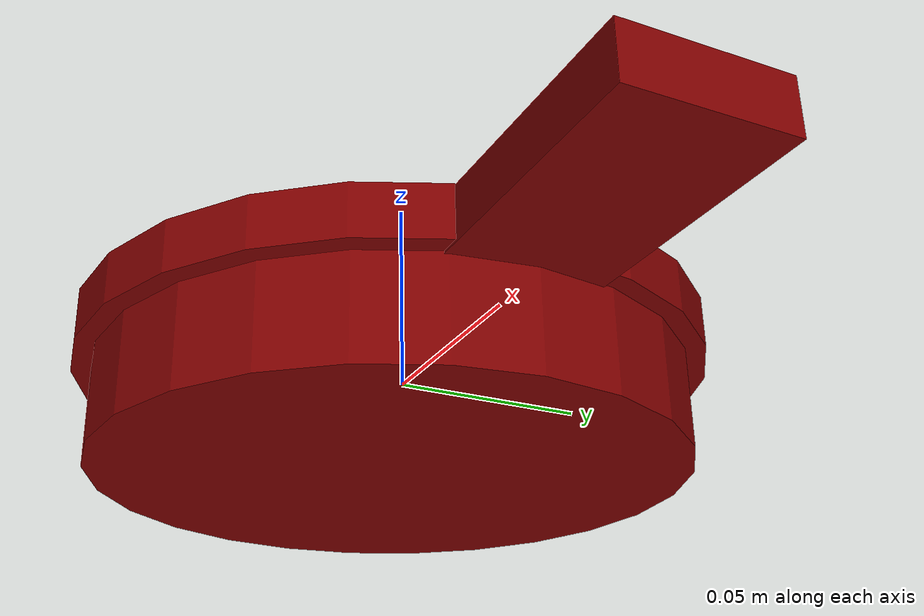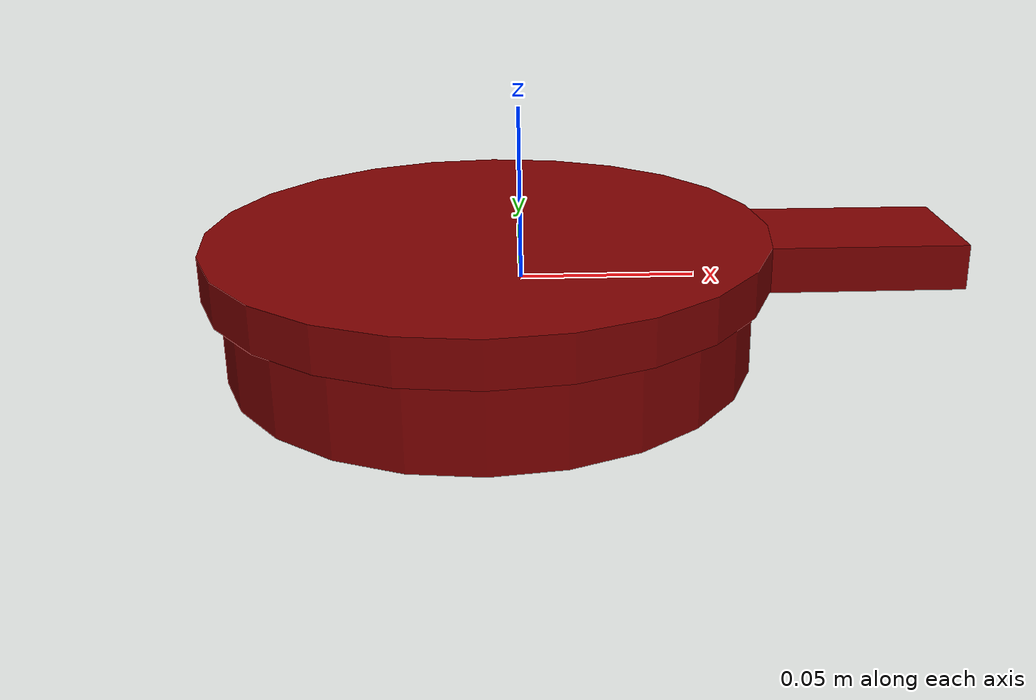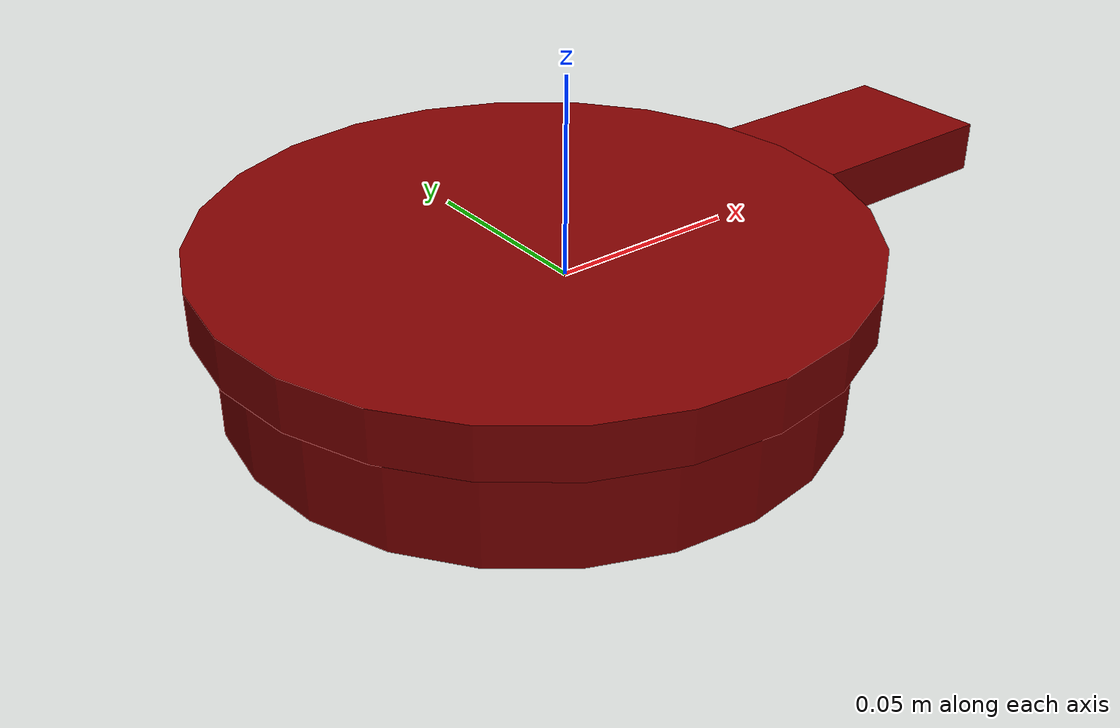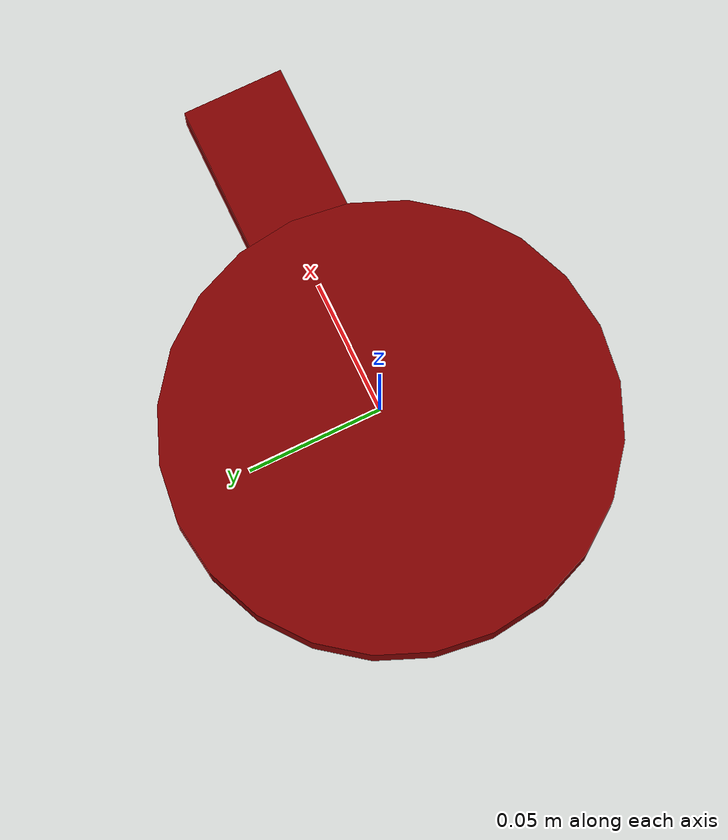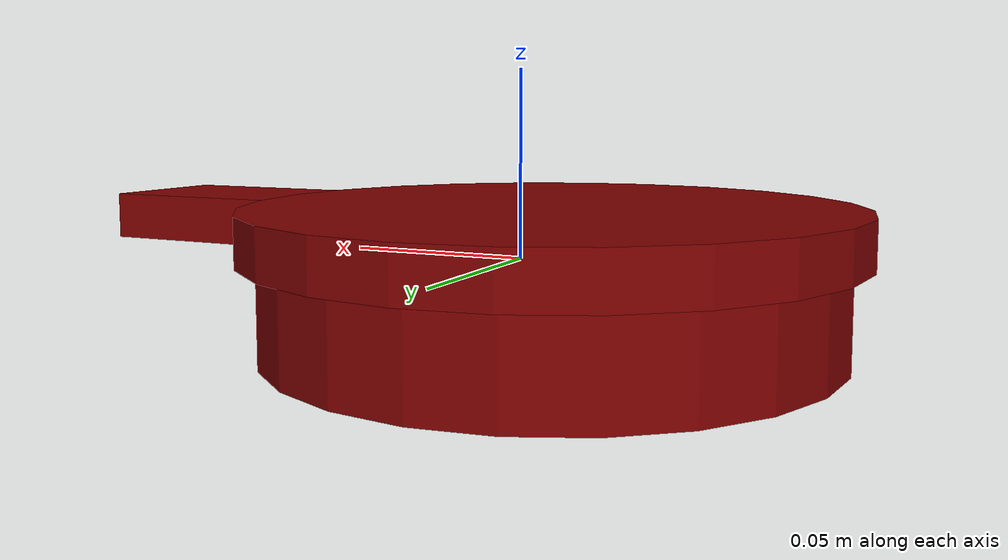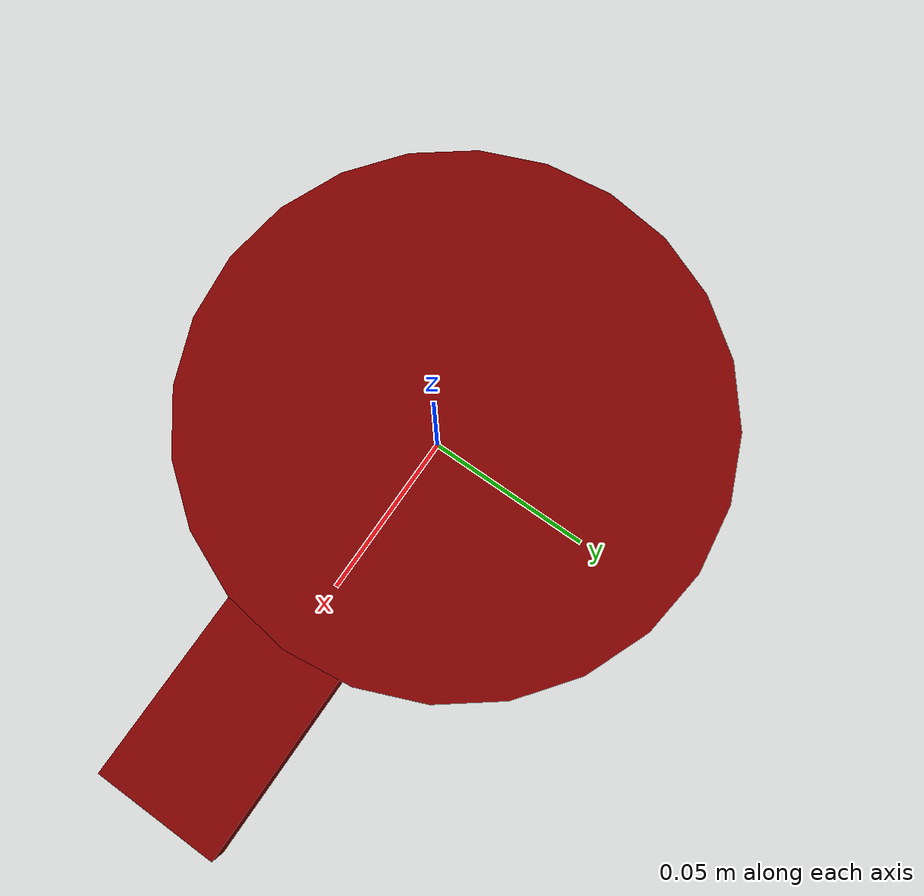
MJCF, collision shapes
<mujoco model="model">
  <option timestep="0.002" gravity="0.0 0.0 -9.81"/>
  <compiler angle="radian"/>
  <asset>
    <texture file="visuals/T_BC001.png" name="lid_material" type="2d"/>
    <material name="lid_material" rgba="1 1 1 1.0" texture="lid_material" shininess="0.1" specular="4"/>
    <mesh file="visuals/lid.obj" name="lid_vis"/>
  </asset>
  <default>
    <default class="visual">
      <geom conaffinity="0" contype="0" group="1" type="mesh"/>
    </default>
    <default class="collision">
      <geom group="0" rgba="0.5 0 0 0.5"/>
    </default>
    <default class="spawn">
      <geom group="0" rgba="1 1 1 0.5" contype="0" conaffinity="0"/>
      <site group="0" rgba="1 1 1 0.5"/>
    </default>
    <default class="region">
      <geom group="1" conaffinity="0" contype="0" rgba="0 1 0 0"/>
    </default>
  </default>
  <worldbody>
    <body>
      <body name="object">
        <geom mesh="lid_vis" type="mesh" solimp="0.998 0.998 0.001" solref="0.001 1" friction="0.95 0.3 0.1" class="visual" material="lid_material"/>
        <geom class="collision" name="handle_main" type="box" pos="0.0910747053973492 -0.0015238099710827707 0.007778947518220336" size="0.032711468648910522 0.01871908175945282 0.006457323762029409" quat="1.0 0.0 0.0 0.0" density="1000.0"/>
        <geom class="collision" type="cylinder" pos="-0.008957304602650804 0.00022508002891722962 0.008246517518220337" size="0.08035063743591309 0.006332592573016882" quat="1.0 0.0 0.0 0.0" density="1000.0"/>
        <geom class="collision" type="cylinder" pos="-0.008957304602650804 0.00022508002891722962 -0.00946517518220337" size="0.0755063743591309 0.01332592573016882" quat="1.0 0.0 0.0 0.0" density="1000.0"/>
        <geom class="region" name="reg_main" density="0" type="box" pos="0.016810769999999996 0.0001250900000000013 -0.00441963" size="0.10764499999999999 0.083534 0.0191245"/>
      </body>
    </body>
  </worldbody>
</mujoco>
